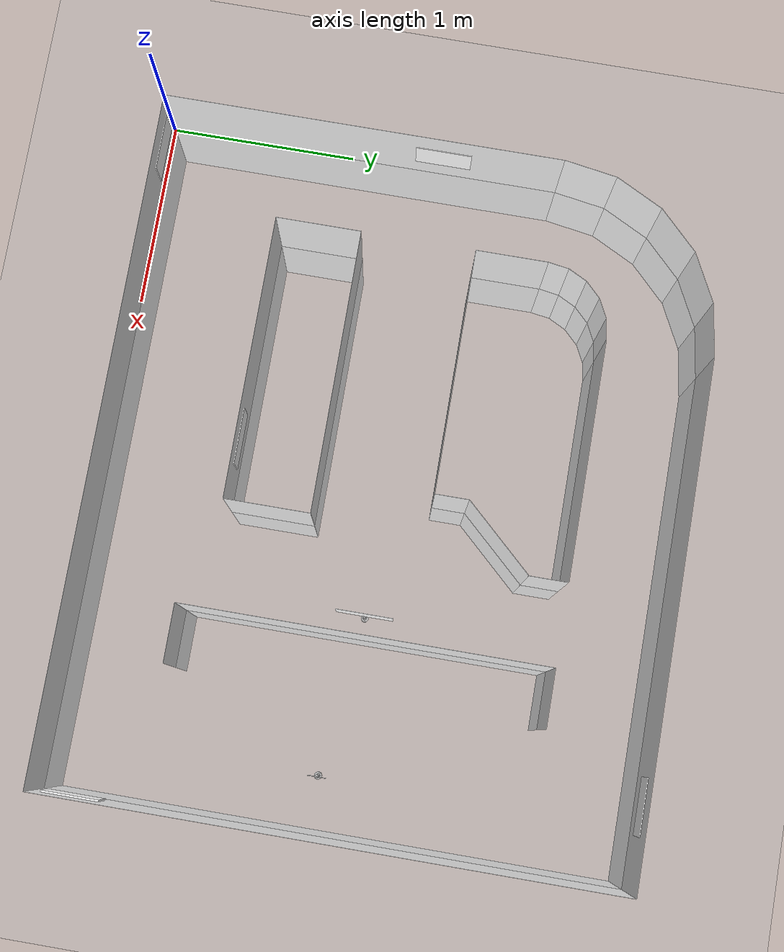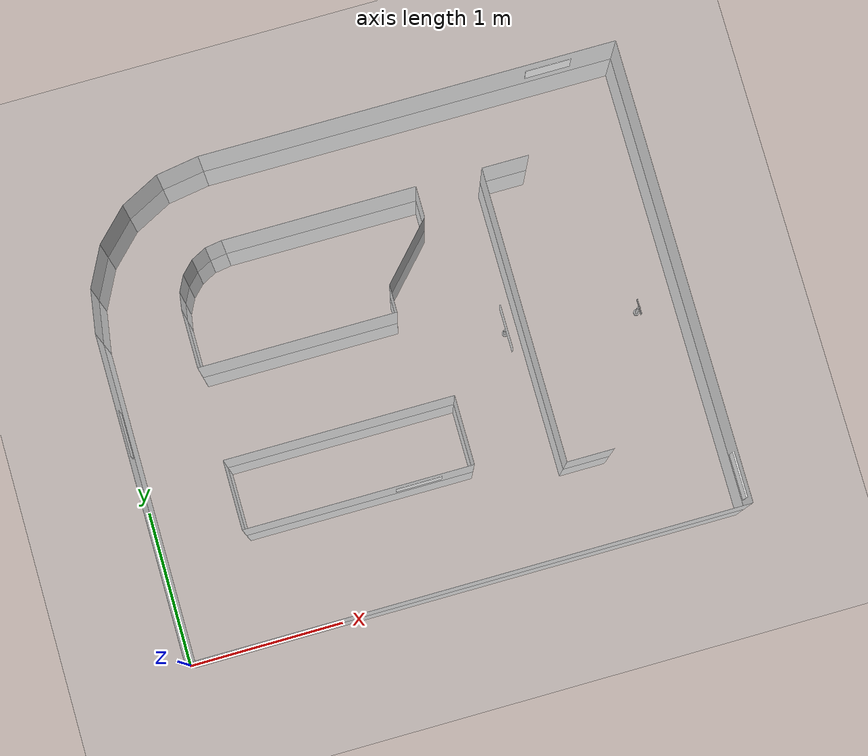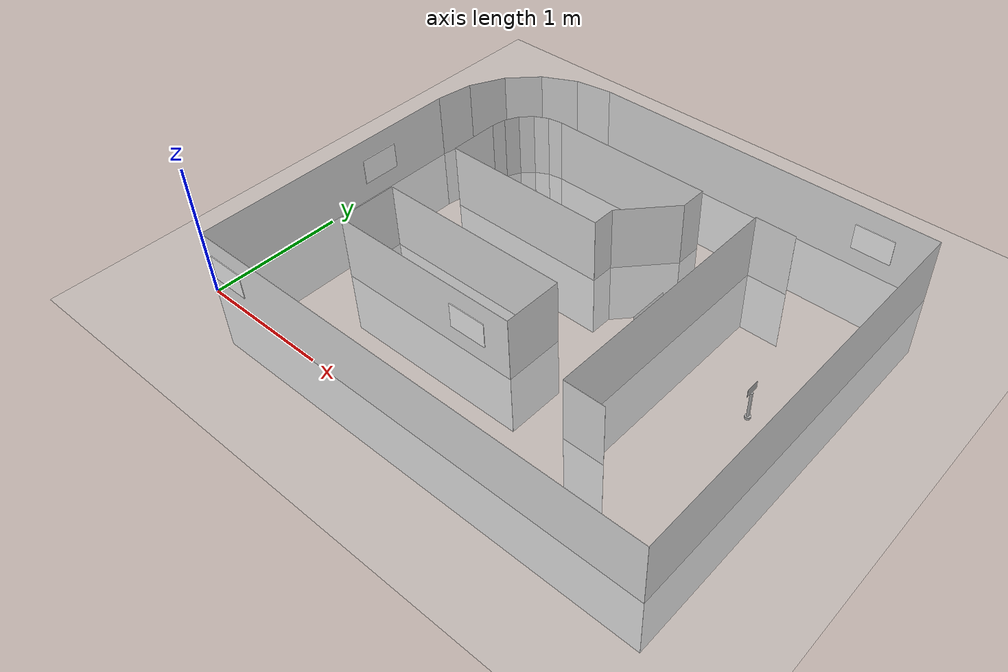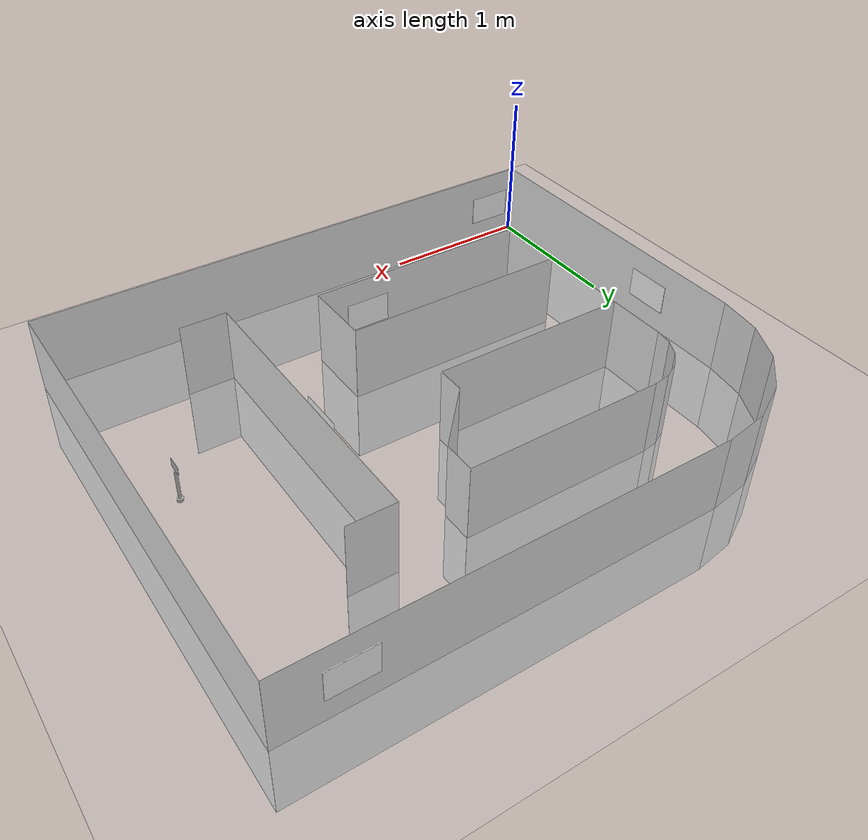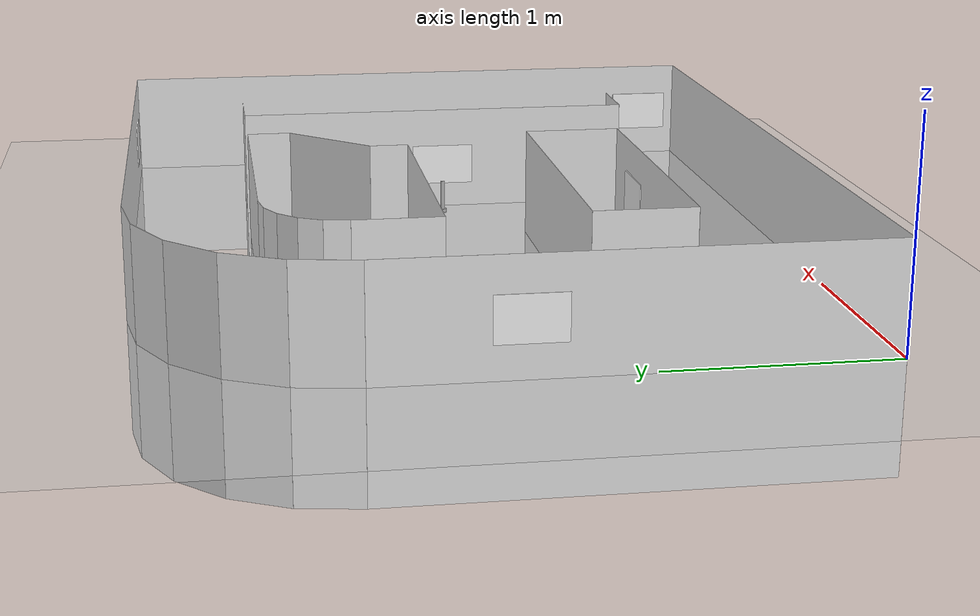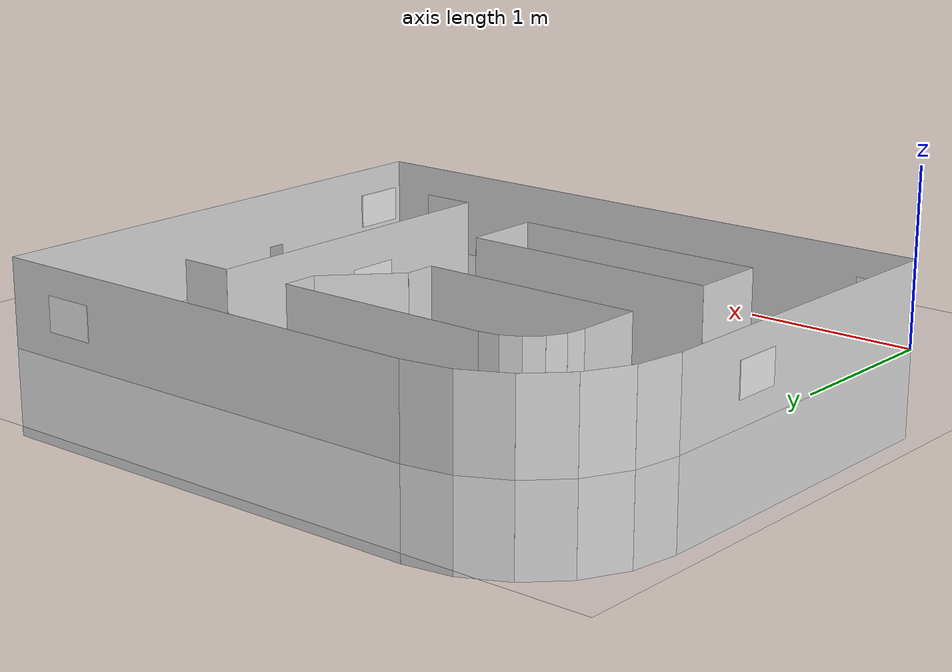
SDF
<sdf version="1.6">
 <world name="default">
  <light name="sun" type="directional">
   <pose>0 0 10 0 -0 0</pose>
   <diffuse>0.8 0.8 0.8 1</diffuse>
   <specular>0.1 0.1 0.1 1</specular>
   <attenuation>
    <range>1000</range>
    <constant>0.9</constant>
    <linear>0.01</linear>
    <quadratic>0.001</quadratic>
   </attenuation>
   <direction>-0.5 0.5 -1</direction>
  </light>
  <model name="girl">
   <static>true</static>
   <link name="plate">
    <pose>0 0 0.2425 0 -0 0</pose>
    <visual name="visual">
     <geometry><box><size>0.01 0.3 0.2</size></box></geometry>
     <material>
      <script>
       <uri>model://girl/materials/scripts</uri>
       <uri>model://girl/materials/textures</uri>
       <name>Girl/Diffuse</name>
      </script>
      <ambient>1 1 1 1</ambient>
      <diffuse>1 1 1 1</diffuse>
      <specular>0 0 0 1</specular>
      <emissive>0 0 0 1</emissive>
     </material>
    </visual>
    <collision name="collision"><geometry><box><size>0.001 0.1 0.065</size></box></geometry></collision>
   </link>
   <pose>0.2 0.0 0.0 0.0 0.0 1.57079632679</pose>
  </model>
  <model name="cat">
   <static>true</static>
   <link name="plate">
    <pose>0 0 0.2425 0 -0 0</pose>
    <visual name="visual">
     <geometry><box><size>0.01 0.3 0.2</size></box></geometry>
     <material>
      <script>
       <uri>model://cat/materials/scripts</uri>
       <uri>model://cat/materials/textures</uri>
       <name>Cat/Diffuse</name>
      </script>
      <ambient>1 1 1 1</ambient>
      <diffuse>1 1 1 1</diffuse>
      <specular>0 0 0 1</specular>
      <emissive>0 0 0 1</emissive>
     </material>
    </visual>
    <collision name="collision"><geometry><box><size>0.001 0.1 0.065</size></box></geometry></collision>
   </link>
   <pose>0 1.5 0.0 0.0 0.0 3.14159</pose>
  </model>
  <model name="tree">
   <static>true</static>
   <link name="plate">
    <pose>0 0 0.2425 0 -0 0</pose>
    <visual name="visual">
     <geometry><box><size>0.01 0.3 0.2</size></box></geometry>
     <material>
      <script>
       <uri>model://tree/materials/scripts</uri>
       <uri>model://tree/materials/textures</uri>
       <name>Tree/Diffuse</name>
      </script>
      <ambient>1 1 1 1</ambient>
      <diffuse>1 1 1 1</diffuse>
      <specular>0 0 0 1</specular>
      <emissive>0 0 0 1</emissive>
     </material>
    </visual>
    <collision name="collision"><geometry><box><size>0.001 0.1 0.065</size></box></geometry></collision>
   </link>
   <pose>3.65 0.2 0.0 0.0 0.0 3.14159</pose>
  </model>
  <model name="stanford">
   <static>true</static>
   <link name="plate">
    <pose>0 0 0.2425 0 -0 0</pose>
    <visual name="visual">
     <geometry><box><size>0.01 0.3 0.2</size></box></geometry>
     <material>
      <script>
       <uri>model://stanford/materials/scripts</uri>
       <uri>model://stanford/materials/textures</uri>
       <name>Stanford/Diffuse</name>
      </script>
      <ambient>1 1 1 1</ambient>
      <diffuse>1 1 1 1</diffuse>
      <specular>0 0 0 1</specular>
      <emissive>0 0 0 1</emissive>
     </material>
    </visual>
    <collision name="collision"><geometry><box><size>0.001 0.1 0.065</size></box></geometry></collision>
   </link>
   <pose>1.7 0.7 0.0 0.0 0.0 1.57079632679</pose>
  </model>
  <model name="banana">
   <static>true</static>
   <link name="plate">
    <pose>0 0 0.2425 0 -0 0</pose>
    <visual name="visual">
     <geometry><box><size>0.01 0.3 0.2</size></box></geometry>
     <material>
      <script>
       <uri>model://banana/materials/scripts</uri>
       <uri>model://banana/materials/textures</uri>
       <name>Banana/Diffuse</name>
      </script>
      <ambient>1 1 1 1</ambient>
      <diffuse>1 1 1 1</diffuse>
      <specular>0 0 0 1</specular>
      <emissive>0 0 0 1</emissive>
     </material>
    </visual>
    <collision name="collision">
     <geometry><box><size>0.001 0.1 0.065</size></box></geometry>
     <surface>
      <friction>
       <ode><mu>1</mu><mu2>1</mu2><fdir1>0 0 0</fdir1><slip1>0</slip1><slip2>0</slip2></ode>
       <torsional>
        <coefficient>1</coefficient>
        <patch_radius>0</patch_radius>
        <surface_radius>0</surface_radius>
        <use_patch_radius>1</use_patch_radius>
        <ode><slip>0</slip></ode>
       </torsional>
      </friction>
      <bounce><restitution_coefficient>0</restitution_coefficient><threshold>1e+06</threshold></bounce>
      <contact>
       <collide_without_contact>0</collide_without_contact>
       <collide_without_contact_bitmask>1</collide_without_contact_bitmask>
       <collide_bitmask>1</collide_bitmask>
       <ode>
        <soft_cfm>0</soft_cfm>
        <soft_erp>0.2</soft_erp>
        <kp>1e+13</kp>
        <kd>1</kd>
        <max_vel>0.01</max_vel>
        <min_depth>0</min_depth>
       </ode>
       <bullet>
        <split_impulse>1</split_impulse>
        <split_impulse_penetration_threshold>-0.01</split_impulse_penetration_threshold>
        <soft_cfm>0</soft_cfm>
        <soft_erp>0.2</soft_erp>
        <kp>1e+13</kp>
        <kd>1</kd>
       </bullet>
      </contact>
     </surface>
    </collision>
   </link>
   <pose>3.22 3.04800609601 0.0 0.0 0.0 1.57079632679</pose>
  </model>
  <model name="hot_dog_sign">
   <link name="plate">
    <pose>0 0 0.2425 0 -0 0</pose>
    <inertial>
     <inertia><ixx>0.1</ixx><ixy>0</ixy><ixz>0</ixz><iyy>0.1</iyy><iyz>0</iyz><izz>0.1</izz></inertia>
     <mass>0.1</mass>
    </inertial>
    <visual name="visual">
     <geometry><box><size>0.001 0.3 0.195</size></box></geometry>
     <material>
      <script>
       <uri>model://hot_dog/materials/scripts</uri>
       <uri>model://hot_dog/materials/textures</uri>
       <name>HotDog/Diffuse</name>
      </script>
      <ambient>1 1 1 1</ambient>
      <diffuse>1 1 1 1</diffuse>
      <specular>0 0 0 1</specular>
      <emissive>0 0 0 1</emissive>
     </material>
    </visual>
    <collision name="collision">
     <geometry><box><size>0.001 0.1 0.065</size></box></geometry>
     <surface>
      <friction>
       <ode><mu>1</mu><mu2>1</mu2><fdir1>0 0 0</fdir1><slip1>0</slip1><slip2>0</slip2></ode>
       <torsional>
        <coefficient>1</coefficient>
        <patch_radius>0</patch_radius>
        <surface_radius>0</surface_radius>
        <use_patch_radius>1</use_patch_radius>
        <ode><slip>0</slip></ode>
       </torsional>
      </friction>
      <bounce><restitution_coefficient>0</restitution_coefficient><threshold>1e+06</threshold></bounce>
      <contact>
       <collide_without_contact>0</collide_without_contact>
       <collide_without_contact_bitmask>1</collide_without_contact_bitmask>
       <collide_bitmask>1</collide_bitmask>
       <ode>
        <soft_cfm>0</soft_cfm>
        <soft_erp>0.2</soft_erp>
        <kp>1e+13</kp>
        <kd>1</kd>
        <max_vel>0.01</max_vel>
        <min_depth>0</min_depth>
       </ode>
       <bullet>
        <split_impulse>1</split_impulse>
        <split_impulse_penetration_threshold>-0.01</split_impulse_penetration_threshold>
        <soft_cfm>0</soft_cfm>
        <soft_erp>0.2</soft_erp>
        <kp>1e+13</kp>
        <kd>1</kd>
       </bullet>
      </contact>
     </surface>
    </collision>
   </link>
   <link name="base">
    <inertial>
     <inertia><ixx>0.1</ixx><ixy>0</ixy><ixz>0</ixz><iyy>0.1</iyy><iyz>0</iyz><izz>0.1</izz></inertia>
     <mass>0.1</mass>
    </inertial>
    <visual name="visual">
     <geometry><cylinder><radius>0.02</radius><length>0.02</length></cylinder></geometry>
    </visual>
    <collision name="collision">
     <geometry><cylinder><radius>0.02</radius><length>0.02</length></cylinder></geometry>
     <surface>
      <friction>
       <ode><mu>0.01</mu><mu2>0.01</mu2><fdir1>0 0 0</fdir1><slip1>0</slip1><slip2>0</slip2></ode>
       <torsional>
        <coefficient>1</coefficient>
        <patch_radius>0</patch_radius>
        <surface_radius>0</surface_radius>
        <use_patch_radius>1</use_patch_radius>
        <ode><slip>0</slip></ode>
       </torsional>
      </friction>
      <bounce><restitution_coefficient>0</restitution_coefficient><threshold>1e+06</threshold></bounce>
      <contact>
       <collide_without_contact>0</collide_without_contact>
       <collide_without_contact_bitmask>1</collide_without_contact_bitmask>
       <collide_bitmask>1</collide_bitmask>
       <ode>
        <soft_cfm>0</soft_cfm>
        <soft_erp>0.2</soft_erp>
        <kp>1e+13</kp>
        <kd>1</kd>
        <max_vel>0.01</max_vel>
        <min_depth>0</min_depth>
       </ode>
       <bullet>
        <split_impulse>1</split_impulse>
        <split_impulse_penetration_threshold>-0.01</split_impulse_penetration_threshold>
        <soft_cfm>0</soft_cfm>
        <soft_erp>0.2</soft_erp>
        <kp>1e+13</kp>
        <kd>1</kd>
       </bullet>
      </contact>
     </surface>
    </collision>
   </link>
   <link name="pole">
    <pose>-0 0 0.08 0 -0 0</pose>
    <inertial>
     <inertia><ixx>1</ixx><ixy>0</ixy><ixz>0</ixz><iyy>1</iyy><iyz>0</iyz><izz>1</izz></inertia>
     <mass>1</mass>
    </inertial>
    <visual name="visual">
     <geometry><cylinder><radius>0.01</radius><length>0.15</length></cylinder></geometry>
    </visual>
    <collision name="collision">
     <geometry><cylinder><radius>0.01</radius><length>0.2</length></cylinder></geometry>
     <surface>
      <friction>
       <ode><mu>1</mu><mu2>1</mu2><fdir1>0 0 0</fdir1><slip1>0</slip1><slip2>0</slip2></ode>
       <torsional>
        <coefficient>1</coefficient>
        <patch_radius>0</patch_radius>
        <surface_radius>0</surface_radius>
        <use_patch_radius>1</use_patch_radius>
        <ode><slip>0</slip></ode>
       </torsional>
      </friction>
      <bounce><restitution_coefficient>0</restitution_coefficient><threshold>1e+06</threshold></bounce>
      <contact>
       <collide_without_contact>0</collide_without_contact>
       <collide_without_contact_bitmask>1</collide_without_contact_bitmask>
       <collide_bitmask>1</collide_bitmask>
       <ode>
        <soft_cfm>0</soft_cfm>
        <soft_erp>0.2</soft_erp>
        <kp>1e+13</kp>
        <kd>1</kd>
        <max_vel>0.01</max_vel>
        <min_depth>0</min_depth>
       </ode>
       <bullet>
        <split_impulse>1</split_impulse>
        <split_impulse_penetration_threshold>-0.01</split_impulse_penetration_threshold>
        <soft_cfm>0</soft_cfm>
        <soft_erp>0.2</soft_erp>
        <kp>1e+13</kp>
        <kd>1</kd>
       </bullet>
      </contact>
     </surface>
    </collision>
   </link>
   <joint name="base_pole" type="fixed">
    <parent>base</parent>
    <child>pole</child>
    <pose>0 0 0.02 0 -0 0</pose>
    <physics>
     <ode><limit><cfm>0</cfm><erp>0.2</erp></limit><suspension><cfm>0</cfm><erp>0.2</erp></suspension></ode>
    </physics>
   </joint>
   <joint name="pole_plate" type="fixed">
    <parent>pole</parent>
    <child>plate</child>
    <pose>0 0 0.1 0 -0 0</pose>
    <physics>
     <ode><limit><cfm>0</cfm><erp>0.2</erp></limit><suspension><cfm>0</cfm><erp>0.2</erp></suspension></ode>
    </physics>
   </joint>
   <static>0</static>
   <pose>2.5 1.5 0.0 0.0 0.0 3.14159</pose>
  </model>
  <model name="ground_plane">
   <static>1</static>
   <link name="link">
    <collision name="collision">
     <geometry><plane><normal>0 0 1</normal><size>100 100</size></plane></geometry>
     <surface><friction><ode><mu>100</mu><mu2>50</mu2></ode></friction></surface>
    </collision>
    <visual name="visual">
     <cast_shadows>0</cast_shadows>
     <geometry><plane><normal>0 0 1</normal><size>100 100</size></plane></geometry>
     <material>
      <script><uri>file://media/materials/scripts/gazebo.material</uri><name>Gazebo/Grey</name></script>
     </material>
    </visual>
   </link>
  </model>
  <model name="wall_0">
   <static>1</static>
   <link name="link">
    <collision name="collision"><geometry><box><size>2.13360426721 0.001 1</size></box></geometry></collision>
    <visual name="visual">
     <geometry><box><size>2.13360426721 0.001 1</size></box></geometry>
     <material>
      <script><name>Gazebo/White</name><uri>file://media/materials/scripts/gazebo.material</uri></script>
     </material>
    </visual>
   </link>
   <pose>0.0 1.0668021336 0 0 0 1.57079632679</pose>
  </model>
  <model name="wall_1">
   <static>1</static>
   <link name="link">
    <collision name="collision"><geometry><box><size>0.286087921841 0.001 1</size></box></geometry></collision>
    <visual name="visual">
     <geometry><box><size>0.286087921841 0.001 1</size></box></geometry>
     <material>
      <script><name>Gazebo/White</name><uri>file://media/materials/scripts/gazebo.material</uri></script>
     </material>
    </visual>
   </link>
   <pose>0.0223770055039 2.2748871196 0 0 0 1.41371669412</pose>
  </model>
  <model name="wall_2">
   <static>1</static>
   <link name="link">
    <collision name="collision"><geometry><box><size>0.286087921841 0.001 1</size></box></geometry></collision>
    <visual name="visual">
     <geometry><box><size>0.286087921841 0.001 1</size></box></geometry>
     <material>
      <script><name>Gazebo/White</name><uri>file://media/materials/scripts/gazebo.material</uri></script>
     </material>
    </visual>
   </link>
   <pose>0.109694610311 2.54362307442 0 0 0 1.09955742876</pose>
  </model>
  <model name="wall_3">
   <static>1</static>
   <link name="link">
    <collision name="collision"><geometry><box><size>0.286087921841 0.001 1</size></box></geometry></collision>
    <visual name="visual">
     <geometry><box><size>0.286087921841 0.001 1</size></box></geometry>
     <material>
      <script><name>Gazebo/White</name><uri>file://media/materials/scripts/gazebo.material</uri></script>
     </material>
    </visual>
   </link>
   <pose>0.275782564389 2.77222353162 0 0 0 0.785398163397</pose>
  </model>
  <model name="wall_4">
   <static>1</static>
   <link name="link">
    <collision name="collision"><geometry><box><size>0.286087921841 0.001 1</size></box></geometry></collision>
    <visual name="visual">
     <geometry><box><size>0.286087921841 0.001 1</size></box></geometry>
     <material>
      <script><name>Gazebo/White</name><uri>file://media/materials/scripts/gazebo.material</uri></script>
     </material>
    </visual>
   </link>
   <pose>0.50438302159 2.9383114857 0 0 0 0.471238898038</pose>
  </model>
  <model name="wall_5">
   <static>1</static>
   <link name="link">
    <collision name="collision"><geometry><box><size>0.286087921841 0.001 1</size></box></geometry></collision>
    <visual name="visual">
     <geometry><box><size>0.286087921841 0.001 1</size></box></geometry>
     <material>
      <script><name>Gazebo/White</name><uri>file://media/materials/scripts/gazebo.material</uri></script>
     </material>
    </visual>
   </link>
   <pose>0.77311897641 3.02562909051 0 0 0 0.157079632679</pose>
  </model>
  <model name="wall_6">
   <static>1</static>
   <link name="link">
    <collision name="collision"><geometry><box><size>2.74320548641 0.001 1</size></box></geometry></collision>
    <visual name="visual">
     <geometry><box><size>2.74320548641 0.001 1</size></box></geometry>
     <material>
      <script><name>Gazebo/White</name><uri>file://media/materials/scripts/gazebo.material</uri></script>
     </material>
    </visual>
   </link>
   <pose>2.28600457201 3.04800609601 0 0 0 0.0</pose>
  </model>
  <model name="wall_7">
   <static>1</static>
   <link name="link">
    <collision name="collision"><geometry><box><size>3.04800609601 0.001 1</size></box></geometry></collision>
    <visual name="visual">
     <geometry><box><size>3.04800609601 0.001 1</size></box></geometry>
     <material>
      <script><name>Gazebo/White</name><uri>file://media/materials/scripts/gazebo.material</uri></script>
     </material>
    </visual>
   </link>
   <pose>3.65760731521 1.52400304801 0 0 0 -1.57079632679</pose>
  </model>
  <model name="wall_8">
   <static>1</static>
   <link name="link">
    <collision name="collision"><geometry><box><size>3.65760731521 0.001 1</size></box></geometry></collision>
    <visual name="visual">
     <geometry><box><size>3.65760731521 0.001 1</size></box></geometry>
     <material>
      <script><name>Gazebo/White</name><uri>file://media/materials/scripts/gazebo.material</uri></script>
     </material>
    </visual>
   </link>
   <pose>1.82880365761 0.0 0 0 0 3.14159265359</pose>
  </model>
  <model name="wall_9">
   <static>1</static>
   <link name="link">
    <collision name="collision"><geometry><box><size>0.45 0.001 1</size></box></geometry></collision>
    <visual name="visual">
     <geometry><box><size>0.45 0.001 1</size></box></geometry>
     <material>
      <script><name>Gazebo/White</name><uri>file://media/materials/scripts/gazebo.material</uri></script>
     </material>
    </visual>
   </link>
   <pose>0.558801117602 0.925 0 0 0 1.57079632679</pose>
  </model>
  <model name="wall_10">
   <static>1</static>
   <link name="link">
    <collision name="collision"><geometry><box><size>1.49860299721 0.001 1</size></box></geometry></collision>
    <visual name="visual">
     <geometry><box><size>1.49860299721 0.001 1</size></box></geometry>
     <material>
      <script><name>Gazebo/White</name><uri>file://media/materials/scripts/gazebo.material</uri></script>
     </material>
    </visual>
   </link>
   <pose>1.30810261621 1.15 0 0 0 0.0</pose>
  </model>
  <model name="wall_11">
   <static>1</static>
   <link name="link">
    <collision name="collision"><geometry><box><size>0.45 0.001 1</size></box></geometry></collision>
    <visual name="visual">
     <geometry><box><size>0.45 0.001 1</size></box></geometry>
     <material>
      <script><name>Gazebo/White</name><uri>file://media/materials/scripts/gazebo.material</uri></script>
     </material>
    </visual>
   </link>
   <pose>2.05740411481 0.925 0 0 0 -1.57079632679</pose>
  </model>
  <model name="wall_12">
   <static>1</static>
   <link name="link">
    <collision name="collision"><geometry><box><size>1.49860299721 0.001 1</size></box></geometry></collision>
    <visual name="visual">
     <geometry><box><size>1.49860299721 0.001 1</size></box></geometry>
     <material>
      <script><name>Gazebo/White</name><uri>file://media/materials/scripts/gazebo.material</uri></script>
     </material>
    </visual>
   </link>
   <pose>1.30810261621 0.7 0 0 0 3.14159265359</pose>
  </model>
  <model name="wall_13">
   <static>1</static>
   <link name="link">
    <collision name="collision"><geometry><box><size>0.381000762002 0.001 1</size></box></geometry></collision>
    <visual name="visual">
     <geometry><box><size>0.381000762002 0.001 1</size></box></geometry>
     <material>
      <script><name>Gazebo/White</name><uri>file://media/materials/scripts/gazebo.material</uri></script>
     </material>
    </visual>
   </link>
   <pose>0.558801117602 1.94310388621 0 0 0 1.57079632679</pose>
  </model>
  <model name="wall_14">
   <static>1</static>
   <link name="link">
    <collision name="collision"><geometry><box><size>0.111256414049 0.001 1</size></box></geometry></collision>
    <visual name="visual">
     <geometry><box><size>0.111256414049 0.001 1</size></box></geometry>
     <material>
      <script><name>Gazebo/White</name><uri>file://media/materials/scripts/gazebo.material</uri></script>
     </material>
    </visual>
   </link>
   <pose>0.567503286409 2.1885475987 0 0 0 1.41371669412</pose>
  </model>
  <model name="wall_15">
   <static>1</static>
   <link name="link">
    <collision name="collision"><geometry><box><size>0.111256414049 0.001 1</size></box></geometry></collision>
    <visual name="visual">
     <geometry><box><size>0.111256414049 0.001 1</size></box></geometry>
     <material>
      <script><name>Gazebo/White</name><uri>file://media/materials/scripts/gazebo.material</uri></script>
     </material>
    </visual>
   </link>
   <pose>0.601460132723 2.29305602557 0 0 0 1.09955742876</pose>
  </model>
  <model name="wall_16">
   <static>1</static>
   <link name="link">
    <collision name="collision"><geometry><box><size>0.111256414049 0.001 1</size></box></geometry></collision>
    <visual name="visual">
     <geometry><box><size>0.111256414049 0.001 1</size></box></geometry>
     <material>
      <script><name>Gazebo/White</name><uri>file://media/materials/scripts/gazebo.material</uri></script>
     </material>
    </visual>
   </link>
   <pose>0.666049892642 2.38195620337 0 0 0 0.785398163397</pose>
  </model>
  <model name="wall_17">
   <static>1</static>
   <link name="link">
    <collision name="collision"><geometry><box><size>0.111256414049 0.001 1</size></box></geometry></collision>
    <visual name="visual">
     <geometry><box><size>0.111256414049 0.001 1</size></box></geometry>
     <material>
      <script><name>Gazebo/White</name><uri>file://media/materials/scripts/gazebo.material</uri></script>
     </material>
    </visual>
   </link>
   <pose>0.754950070443 2.44654596329 0 0 0 0.471238898038</pose>
  </model>
  <model name="wall_18">
   <static>1</static>
   <link name="link">
    <collision name="collision"><geometry><box><size>0.111256414049 0.001 1</size></box></geometry></collision>
    <visual name="visual">
     <geometry><box><size>0.111256414049 0.001 1</size></box></geometry>
     <material>
      <script><name>Gazebo/White</name><uri>file://media/materials/scripts/gazebo.material</uri></script>
     </material>
    </visual>
   </link>
   <pose>0.859458497317 2.4805028096 0 0 0 0.157079632679</pose>
  </model>
  <model name="wall_19">
   <static>1</static>
   <link name="link">
    <collision name="collision"><geometry><box><size>1.27000254001 0.001 1</size></box></geometry></collision>
    <visual name="visual">
     <geometry><box><size>1.27000254001 0.001 1</size></box></geometry>
     <material>
      <script><name>Gazebo/White</name><uri>file://media/materials/scripts/gazebo.material</uri></script>
     </material>
    </visual>
   </link>
   <pose>1.54940309881 2.48920497841 0 0 0 0.0</pose>
  </model>
  <model name="wall_20">
   <static>1</static>
   <link name="link">
    <collision name="collision"><geometry><box><size>0.203200406401 0.001 1</size></box></geometry></collision>
    <visual name="visual">
     <geometry><box><size>0.203200406401 0.001 1</size></box></geometry>
     <material>
      <script><name>Gazebo/White</name><uri>file://media/materials/scripts/gazebo.material</uri></script>
     </material>
    </visual>
   </link>
   <pose>2.18440436881 2.38760477521 0 0 0 -1.57079632679</pose>
  </model>
  <model name="wall_21">
   <static>1</static>
   <link name="link">
    <collision name="collision"><geometry><box><size>0.485267289168 0.001 1</size></box></geometry></collision>
    <visual name="visual">
     <geometry><box><size>0.485267289168 0.001 1</size></box></geometry>
     <material>
      <script><name>Gazebo/White</name><uri>file://media/materials/scripts/gazebo.material</uri></script>
     </material>
    </visual>
   </link>
   <pose>2.01930403861 2.10820421641 0 0 0 -2.31917437432</pose>
  </model>
  <model name="wall_22">
   <static>1</static>
   <link name="link">
    <collision name="collision"><geometry><box><size>0.177800355601 0.001 1</size></box></geometry></collision>
    <visual name="visual">
     <geometry><box><size>0.177800355601 0.001 1</size></box></geometry>
     <material>
      <script><name>Gazebo/White</name><uri>file://media/materials/scripts/gazebo.material</uri></script>
     </material>
    </visual>
   </link>
   <pose>1.85420370841 1.84150368301 0 0 0 -1.57079632679</pose>
  </model>
  <model name="wall_23">
   <static>1</static>
   <link name="link">
    <collision name="collision"><geometry><box><size>1.29540259081 0.001 1</size></box></geometry></collision>
    <visual name="visual">
     <geometry><box><size>1.29540259081 0.001 1</size></box></geometry>
     <material>
      <script><name>Gazebo/White</name><uri>file://media/materials/scripts/gazebo.material</uri></script>
     </material>
    </visual>
   </link>
   <pose>1.206502413 1.75260350521 0 0 0 3.14159265359</pose>
  </model>
  <model name="wall_24">
   <static>1</static>
   <link name="link">
    <collision name="collision"><geometry><box><size>0.308001016002 0.001 1</size></box></geometry></collision>
    <visual name="visual">
     <geometry><box><size>0.308001016002 0.001 1</size></box></geometry>
     <material>
      <script><name>Gazebo/White</name><uri>file://media/materials/scripts/gazebo.material</uri></script>
     </material>
    </visual>
   </link>
   <pose>2.77020574041 2.48920497841 0 0 0 0.0</pose>
  </model>
  <model name="wall_25">
   <static>1</static>
   <link name="link">
    <collision name="collision"><geometry><box><size>0.308001016002 0.001 1</size></box></geometry></collision>
    <visual name="visual">
     <geometry><box><size>0.308001016002 0.001 1</size></box></geometry>
     <material>
      <script><name>Gazebo/White</name><uri>file://media/materials/scripts/gazebo.material</uri></script>
     </material>
    </visual>
   </link>
   <pose>2.77020574041 0.558801117602 0 0 0 3.14159265359</pose>
  </model>
  <model name="wall_26">
   <static>1</static>
   <link name="link">
    <collision name="collision"><geometry><box><size>1.93040386081 0.001 1</size></box></geometry></collision>
    <visual name="visual">
     <geometry><box><size>1.93040386081 0.001 1</size></box></geometry>
     <material>
      <script><name>Gazebo/White</name><uri>file://media/materials/scripts/gazebo.material</uri></script>
     </material>
    </visual>
   </link>
   <pose>2.61620523241 1.52400304801 0 0 0 1.57079632679</pose>
  </model>
  <model name="flag">
   <link name="plate">
    <pose>0 0 0.2425 0 0 0</pose>
    <collision name="collision">
     <geometry><box><size>0.001 0.1 0.065</size></box></geometry>
     <surface><friction><ode><mu>1</mu><mu2>1</mu2></ode></friction></surface>
    </collision>
    <visual name="visual"><geometry><box><size>0.001 0.1 0.065</size></box></geometry></visual>
    <inertial>
     <inertia><ixx>0.1</ixx><ixy>0</ixy><ixz>0</ixz><iyy>0.1</iyy><iyz>0</iyz><izz>0.1</izz></inertia>
     <mass>0.1</mass>
    </inertial>
   </link>
   <link name="pole">
    <pose>0 0 0.11 0 0 0</pose>
    <collision name="collision">
     <geometry><cylinder><radius>0.01</radius><length>0.2</length></cylinder></geometry>
     <surface>
      <friction><torsional><coefficient>1</coefficient></torsional><ode><mu>1</mu><mu2>1</mu2></ode></friction>
     </surface>
    </collision>
    <visual name="visual">
     <geometry><cylinder><radius>0.01</radius><length>0.2</length></cylinder></geometry>
    </visual>
    <inertial>
     <inertia><ixx>1</ixx><ixy>0</ixy><ixz>0</ixz><iyy>1</iyy><iyz>0</iyz><izz>1</izz></inertia>
     <mass>1</mass>
    </inertial>
   </link>
   <link name="base">
    <collision name="collision">
     <geometry><cylinder><radius>0.02</radius><length>0.02</length></cylinder></geometry>
     <surface><friction><ode><mu>0.01</mu><mu2>0.01</mu2></ode></friction></surface>
    </collision>
    <visual name="visual">
     <geometry><cylinder><radius>0.02</radius><length>0.02</length></cylinder></geometry>
    </visual>
    <inertial>
     <inertia><ixx>0.1</ixx><ixy>0</ixy><ixz>0</ixz><iyy>0.1</iyy><iyz>0</iyz><izz>0.1</izz></inertia>
     <mass>0.1</mass>
    </inertial>
    <gravity>0</gravity>
   </link>
   <joint name="base_pole" type="fixed">
    <parent>base</parent>
    <child>pole</child>
    <pose>0 0 0.02 0 0 0</pose>
   </joint>
   <joint name="pole_plate" type="fixed">
    <parent>pole</parent>
    <child>plate</child>
    <pose>0 0 0.1 0 0 0</pose>
   </joint>
   <pose>3.35 1.4 0.01 0.0 0.0 3.14159</pose>
  </model>
  <gravity>0 0 -9.8</gravity>
  <magnetic_field>6e-06 2.3e-05 -4.2e-05</magnetic_field>
  <atmosphere type="adiabatic"/>
  <physics name="default_physics" default="0" type="ode">
   <max_step_size>0.001</max_step_size>
   <real_time_factor>1</real_time_factor>
   <real_time_update_rate>1000</real_time_update_rate>
  </physics>
  <scene><ambient>0.4 0.4 0.4 1</ambient><background>0.7 0.7 0.7 1</background><shadows>1</shadows></scene>
  <spherical_coordinates>
   <surface_model>EARTH_WGS84</surface_model>
   <latitude_deg>0</latitude_deg>
   <longitude_deg>0</longitude_deg>
   <elevation>0</elevation>
   <heading_deg>0</heading_deg>
  </spherical_coordinates>
 </world>
</sdf>
